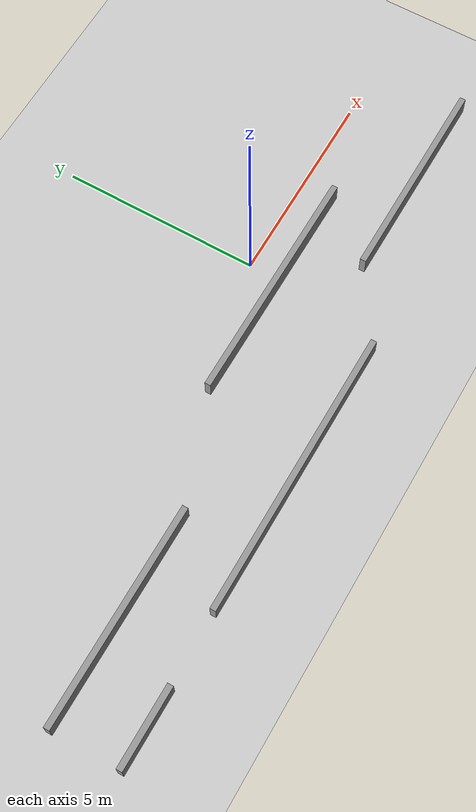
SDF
<sdf version="1.6">
 <world name="default">
  <light name="sun" type="directional">
   <pose>0 0 10 0 -0 0</pose>
   <diffuse>0.8 0.8 0.8 1</diffuse>
   <specular>0.1 0.1 0.1 1</specular>
   <attenuation>
    <range>1000</range>
    <constant>0.9</constant>
    <linear>0.01</linear>
    <quadratic>0.001</quadratic>
   </attenuation>
   <direction>-0.5 0.5 -1</direction>
  </light>
  <model name="ground_plane">
   <static>1</static>
   <link name="link">
    <collision name="collision">
     <geometry><plane><normal>0 0 1</normal><size>100 100</size></plane></geometry>
     <surface><friction><ode><mu>100</mu><mu2>50</mu2></ode></friction></surface>
    </collision>
    <visual name="visual">
     <cast_shadows>0</cast_shadows>
     <geometry><plane><normal>0 0 1</normal><size>100 100</size></plane></geometry>
     <material>
      <script><uri>file://media/materials/scripts/gazebo.material</uri><name>Gazebo/Grey</name></script>
     </material>
    </visual>
   </link>
  </model>
  <gravity>0 0 -9.8</gravity>
  <magnetic_field>6e-06 2.3e-05 -4.2e-05</magnetic_field>
  <atmosphere type="adiabatic"/>
  <physics name="default_physics" default="0" type="ode">
   <max_step_size>0.01</max_step_size>
   <real_time_factor>1</real_time_factor>
   <real_time_update_rate>1000</real_time_update_rate>
  </physics>
  <scene><ambient>0.4 0.4 0.4 1</ambient><background>0.7 0.7 0.7 1</background><shadows>1</shadows></scene>
  <spherical_coordinates>
   <surface_model>EARTH_WGS84</surface_model>
   <latitude_deg>0</latitude_deg>
   <longitude_deg>0</longitude_deg>
   <elevation>0</elevation>
   <heading_deg>0</heading_deg>
  </spherical_coordinates>
  <model name="TwoDiscontinuousWalls">
   <pose>-2.57936 -2.21144 0 0 -0 0</pose>
   <link name="Wall_19">
    <collision name="Wall_19_Collision">
     <geometry><box><size>2 0.15 0.5</size></box></geometry>
     <pose>0 0 0.25 0 -0 0</pose>
    </collision>
    <visual name="Wall_19_Visual">
     <pose>0 0 0.25 0 -0 0</pose>
     <geometry><box><size>2 0.15 0.5</size></box></geometry>
     <material>
      <script><uri>file://media/materials/scripts/gazebo.material</uri><name>Gazebo/Grey</name></script>
      <ambient>1 1 1 1</ambient>
     </material>
     <meta><layer>0</layer></meta>
    </visual>
    <pose>-7.9844 -1.3916 0 0 -0 3.14159</pose>
   </link>
   <link name="Wall_21">
    <collision name="Wall_21_Collision">
     <geometry><box><size>7.25 0.15 0.5</size></box></geometry>
     <pose>0 0 0.25 0 -0 0</pose>
    </collision>
    <visual name="Wall_21_Visual">
     <pose>0 0 0.25 0 -0 0</pose>
     <geometry><box><size>7.25 0.15 0.5</size></box></geometry>
     <material>
      <script><uri>file://media/materials/scripts/gazebo.material</uri><name>Gazebo/Grey</name></script>
      <ambient>1 1 1 1</ambient>
     </material>
     <meta><layer>0</layer></meta>
    </visual>
    <pose>-1.57788 -1.34597 0 0 -0 0</pose>
   </link>
   <link name="Wall_23">
    <collision name="Wall_23_Collision">
     <geometry><box><size>6 0.15 0.5</size></box></geometry>
     <pose>0 0 0.25 0 -0 0</pose>
    </collision>
    <visual name="Wall_23_Visual">
     <pose>0 0 0.25 0 -0 0</pose>
     <geometry><box><size>6 0.15 0.5</size></box></geometry>
     <material>
      <script><uri>file://media/materials/scripts/gazebo.material</uri><name>Gazebo/Grey</name></script>
      <ambient>1 1 1 1</ambient>
     </material>
     <meta><layer>0</layer></meta>
    </visual>
    <pose>2.22286 1.3916 0 0 -0 0</pose>
   </link>
   <link name="Wall_25">
    <collision name="Wall_25_Collision">
     <geometry><box><size>5.25 0.15 0.5</size></box></geometry>
     <pose>0 0 0.25 0 -0 0</pose>
    </collision>
    <visual name="Wall_25_Visual">
     <pose>0 0 0.25 0 -0 0</pose>
     <geometry><box><size>5.25 0.15 0.5</size></box></geometry>
     <material>
      <script><uri>file://media/materials/scripts/gazebo.material</uri><name>Gazebo/Grey</name></script>
      <ambient>1 1 1 1</ambient>
     </material>
     <meta><layer>0</layer></meta>
    </visual>
    <pose>6.39528 -0.144483 0 0 -0 0</pose>
   </link>
   <link name="Wall_5">
    <collision name="Wall_5_Collision">
     <geometry><box><size>5.5 0.15 0.5</size></box></geometry>
     <pose>0 0 0.25 0 -0 0</pose>
    </collision>
    <visual name="Wall_5_Visual">
     <pose>0 0 0.25 0 -0 0</pose>
     <geometry><box><size>5.5 0.15 0.5</size></box></geometry>
     <material>
      <script><uri>file://media/materials/scripts/gazebo.material</uri><name>Gazebo/Grey</name></script>
      <ambient>1 1 1 1</ambient>
     </material>
     <meta><layer>0</layer></meta>
    </visual>
    <pose>-6.27028 0.326988 0 0 -0 0</pose>
   </link>
   <static>1</static>
  </model>
 </world>
</sdf>
